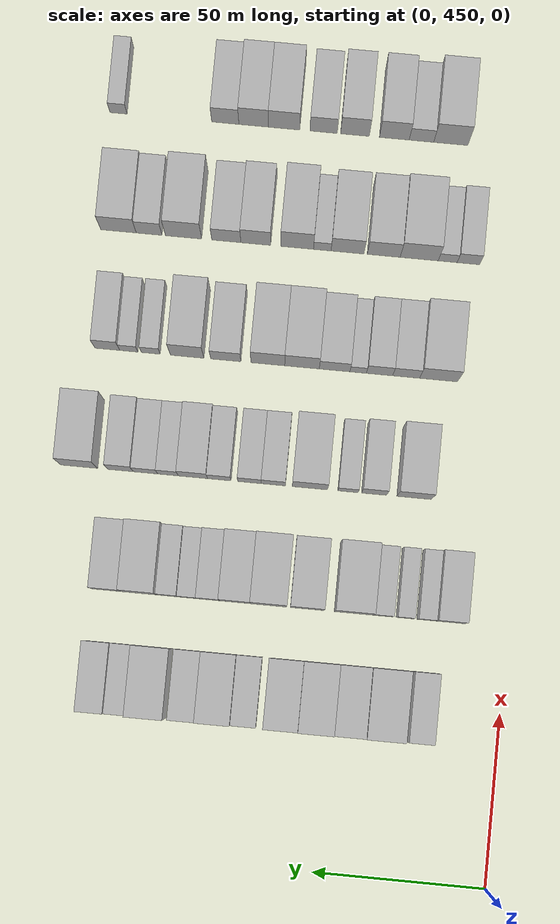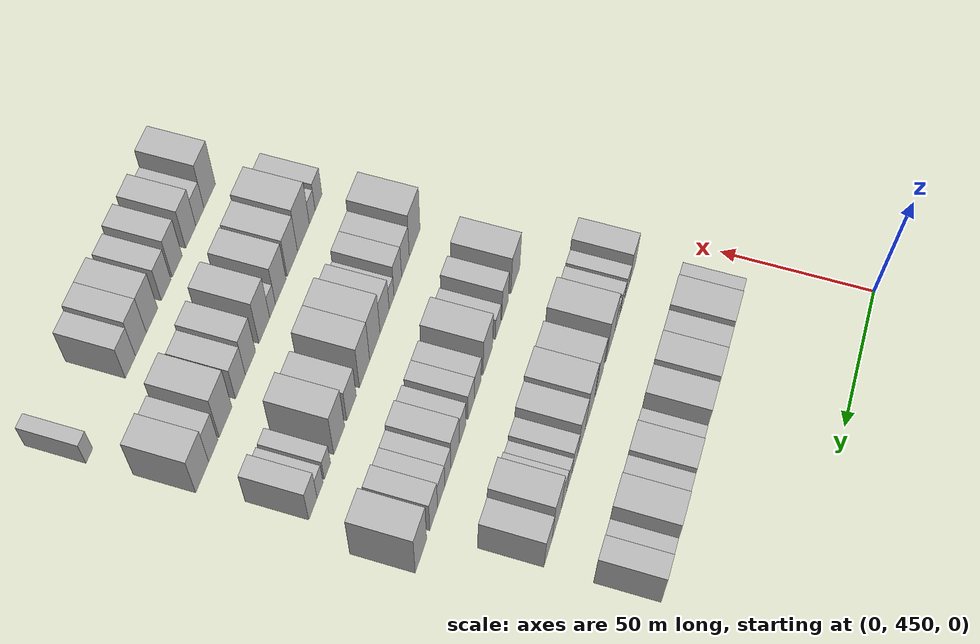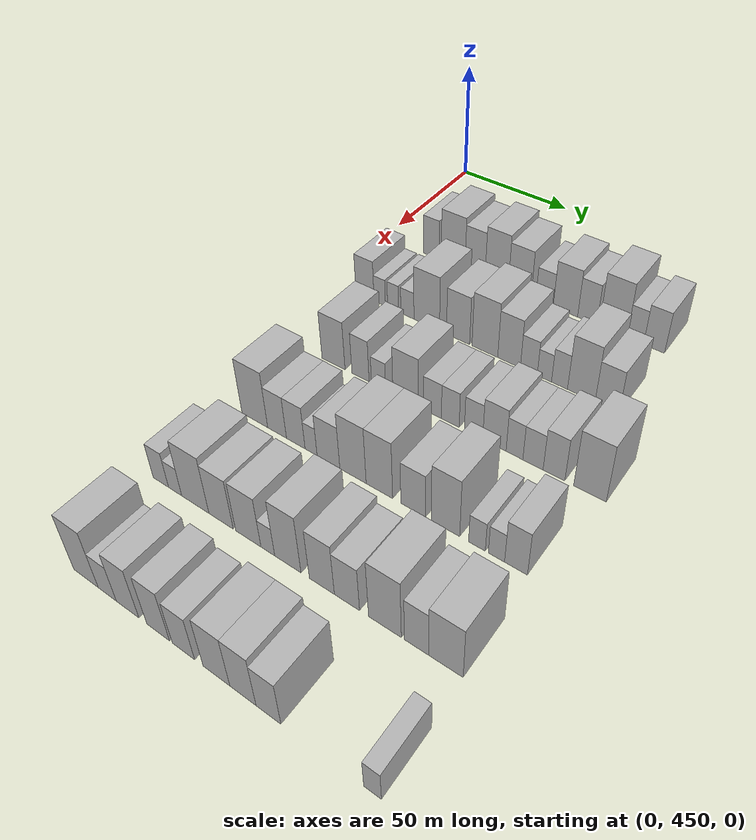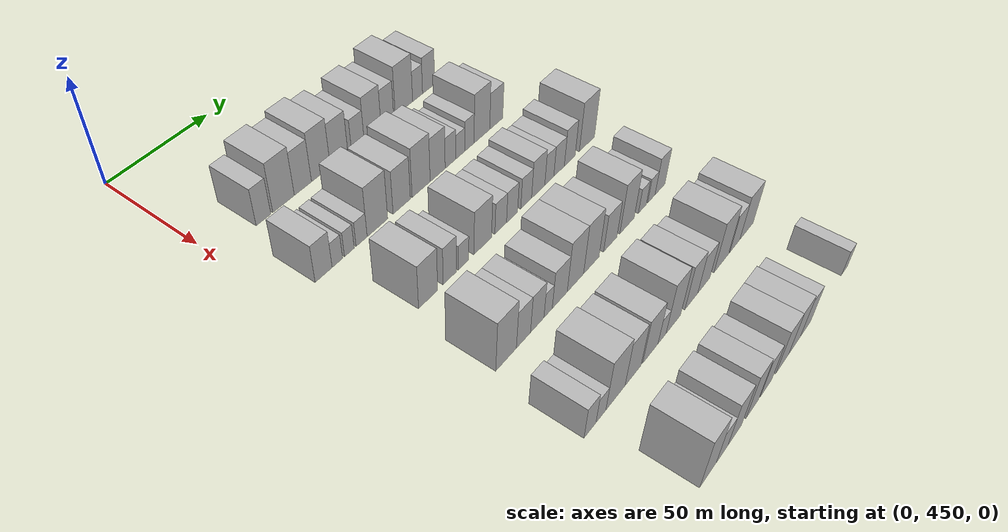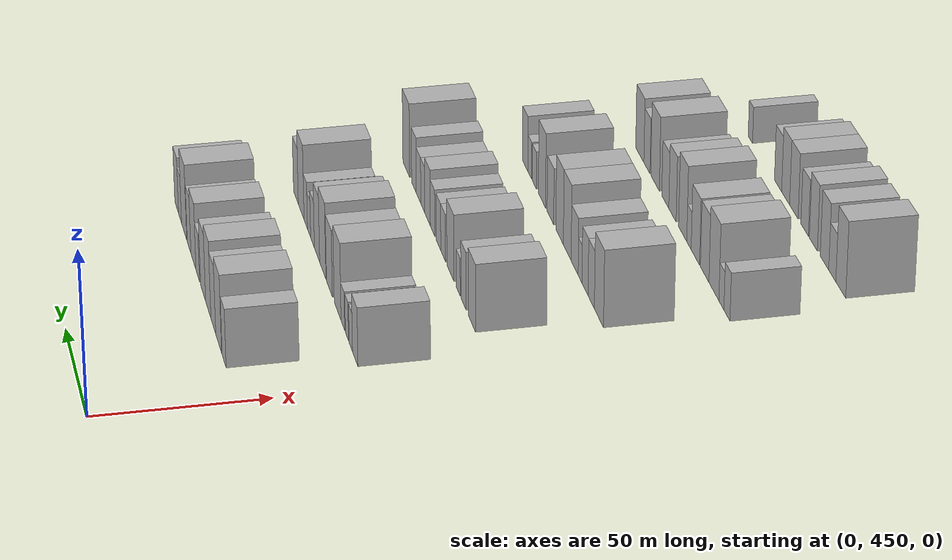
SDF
<sdf version="1.6">
 <world name="default">
  <model name="building_105">
   <static>1</static>
   <pose>50.0000 472.6835 0 0.000000 0.000000 0.000000</pose>
   <link name="link">
    <pose>0 0 9.00 0 0 0</pose>
    <collision name="collision"><geometry><box><size>20.0000 7.3542 18.0000</size></box></geometry></collision>
    <visual name="visual">
     <cast_shadows>0</cast_shadows>
     <geometry><box><size>20.0000 7.3542 18.0000</size></box></geometry>
     <material>
      <script>
       <uri>model://HANNAS_wall/materials/scripts</uri>
       <uri>model://HANNAS_wall/materials/textures</uri>
       <name>vrc/HANNAS_wall</name>
      </script>
     </material>
    </visual>
   </link>
  </model>
  <model name="building_106">
   <static>1</static>
   <pose>50.0000 482.9044 0 0.000000 0.000000 0.000000</pose>
   <link name="link">
    <pose>0 0 12.00 0 0 0</pose>
    <collision name="collision"><geometry><box><size>20.0000 11.0876 24.0000</size></box></geometry></collision>
    <visual name="visual">
     <cast_shadows>0</cast_shadows>
     <geometry><box><size>20.0000 11.0876 24.0000</size></box></geometry>
     <material>
      <script>
       <uri>model://HANNAS_wall/materials/scripts</uri>
       <uri>model://HANNAS_wall/materials/textures</uri>
       <name>vrc/HANNAS_wall</name>
      </script>
     </material>
    </visual>
   </link>
  </model>
  <model name="building_107">
   <static>1</static>
   <pose>50.0000 493.0056 0 0.000000 0.000000 0.000000</pose>
   <link name="link">
    <pose>0 0 10.50 0 0 0</pose>
    <collision name="collision"><geometry><box><size>20.0000 9.1148 21.0000</size></box></geometry></collision>
    <visual name="visual">
     <cast_shadows>0</cast_shadows>
     <geometry><box><size>20.0000 9.1148 21.0000</size></box></geometry>
     <material>
      <script>
       <uri>model://HANNAS_wall/materials/scripts</uri>
       <uri>model://HANNAS_wall/materials/textures</uri>
       <name>vrc/HANNAS_wall</name>
      </script>
     </material>
    </visual>
   </link>
  </model>
  <model name="building_108">
   <static>1</static>
   <pose>50.0000 502.7016 0 0.000000 0.000000 0.000000</pose>
   <link name="link">
    <pose>0 0 12.00 0 0 0</pose>
    <collision name="collision"><geometry><box><size>20.0000 10.2772 24.0000</size></box></geometry></collision>
    <visual name="visual">
     <cast_shadows>0</cast_shadows>
     <geometry><box><size>20.0000 10.2772 24.0000</size></box></geometry>
     <material>
      <script>
       <uri>model://HANNAS_wall/materials/scripts</uri>
       <uri>model://HANNAS_wall/materials/textures</uri>
       <name>vrc/HANNAS_wall</name>
      </script>
     </material>
    </visual>
   </link>
  </model>
  <model name="building_109">
   <static>1</static>
   <pose>50.0000 512.7826 0 0.000000 0.000000 0.000000</pose>
   <link name="link">
    <pose>0 0 10.50 0 0 0</pose>
    <collision name="collision"><geometry><box><size>20.0000 9.8848 21.0000</size></box></geometry></collision>
    <visual name="visual">
     <cast_shadows>0</cast_shadows>
     <geometry><box><size>20.0000 9.8848 21.0000</size></box></geometry>
     <material>
      <script>
       <uri>model://HANNAS_wall/materials/scripts</uri>
       <uri>model://HANNAS_wall/materials/textures</uri>
       <name>vrc/HANNAS_wall</name>
      </script>
     </material>
    </visual>
   </link>
  </model>
  <model name="building_110">
   <static>1</static>
   <pose>50.0000 523.3866 0 0.000000 0.000000 0.000000</pose>
   <link name="link">
    <pose>0 0 7.50 0 0 0</pose>
    <collision name="collision"><geometry><box><size>20.0000 7.3233 15.0000</size></box></geometry></collision>
    <visual name="visual">
     <cast_shadows>0</cast_shadows>
     <geometry><box><size>20.0000 7.3233 15.0000</size></box></geometry>
     <material>
      <script>
       <uri>model://HANNAS_wall/materials/scripts</uri>
       <uri>model://HANNAS_wall/materials/textures</uri>
       <name>vrc/HANNAS_wall</name>
      </script>
     </material>
    </visual>
   </link>
  </model>
  <model name="building_111">
   <static>1</static>
   <pose>50.0000 532.0826 0 0.000000 0.000000 0.000000</pose>
   <link name="link">
    <pose>0 0 10.50 0 0 0</pose>
    <collision name="collision"><geometry><box><size>20.0000 10.0685 21.0000</size></box></geometry></collision>
    <visual name="visual">
     <cast_shadows>0</cast_shadows>
     <geometry><box><size>20.0000 10.0685 21.0000</size></box></geometry>
     <material>
      <script>
       <uri>model://HANNAS_wall/materials/scripts</uri>
       <uri>model://HANNAS_wall/materials/textures</uri>
       <name>vrc/HANNAS_wall</name>
      </script>
     </material>
    </visual>
   </link>
  </model>
  <model name="building_112">
   <static>1</static>
   <pose>50.0000 540.9679 0 0.000000 0.000000 0.000000</pose>
   <link name="link">
    <pose>0 0 9.00 0 0 0</pose>
    <collision name="collision"><geometry><box><size>20.0000 7.7022 18.0000</size></box></geometry></collision>
    <visual name="visual">
     <cast_shadows>0</cast_shadows>
     <geometry><box><size>20.0000 7.7022 18.0000</size></box></geometry>
     <material>
      <script>
       <uri>model://HANNAS_wall/materials/scripts</uri>
       <uri>model://HANNAS_wall/materials/textures</uri>
       <name>vrc/HANNAS_wall</name>
      </script>
     </material>
    </visual>
   </link>
  </model>
  <model name="building_113">
   <static>1</static>
   <pose>50.0000 551.2497 0 0.000000 0.000000 0.000000</pose>
   <link name="link">
    <pose>0 0 12.00 0 0 0</pose>
    <collision name="collision"><geometry><box><size>20.0000 10.8615 24.0000</size></box></geometry></collision>
    <visual name="visual">
     <cast_shadows>0</cast_shadows>
     <geometry><box><size>20.0000 10.8615 24.0000</size></box></geometry>
     <material>
      <script>
       <uri>model://HANNAS_wall/materials/scripts</uri>
       <uri>model://HANNAS_wall/materials/textures</uri>
       <name>vrc/HANNAS_wall</name>
      </script>
     </material>
    </visual>
   </link>
  </model>
  <model name="building_114">
   <static>1</static>
   <pose>50.0000 559.8625 0 0.000000 0.000000 0.000000</pose>
   <link name="link">
    <pose>0 0 7.50 0 0 0</pose>
    <collision name="collision"><geometry><box><size>20.0000 6.3642 15.0000</size></box></geometry></collision>
    <visual name="visual">
     <cast_shadows>0</cast_shadows>
     <geometry><box><size>20.0000 6.3642 15.0000</size></box></geometry>
     <material>
      <script>
       <uri>model://HANNAS_wall/materials/scripts</uri>
       <uri>model://HANNAS_wall/materials/textures</uri>
       <name>vrc/HANNAS_wall</name>
      </script>
     </material>
    </visual>
   </link>
  </model>
  <model name="building_115">
   <static>1</static>
   <pose>50.0000 566.9976 0 0.000000 0.000000 0.000000</pose>
   <link name="link">
    <pose>0 0 9.00 0 0 0</pose>
    <collision name="collision"><geometry><box><size>20.0000 7.9060 18.0000</size></box></geometry></collision>
    <visual name="visual">
     <cast_shadows>0</cast_shadows>
     <geometry><box><size>20.0000 7.9060 18.0000</size></box></geometry>
     <material>
      <script>
       <uri>model://HANNAS_wall/materials/scripts</uri>
       <uri>model://HANNAS_wall/materials/textures</uri>
       <name>vrc/HANNAS_wall</name>
      </script>
     </material>
    </visual>
   </link>
  </model>
  <model name="building_236">
   <static>1</static>
   <pose>85.0000 466.7882 0 0.000000 0.000000 0.000000</pose>
   <link name="link">
    <pose>0 0 9.00 0 0 0</pose>
    <collision name="collision"><geometry><box><size>20.0000 8.4854 18.0000</size></box></geometry></collision>
    <visual name="visual">
     <cast_shadows>0</cast_shadows>
     <geometry><box><size>20.0000 8.4854 18.0000</size></box></geometry>
     <material>
      <script>
       <uri>model://HANNAS_wall/materials/scripts</uri>
       <uri>model://HANNAS_wall/materials/textures</uri>
       <name>vrc/HANNAS_wall</name>
      </script>
     </material>
    </visual>
   </link>
  </model>
  <model name="building_237">
   <static>1</static>
   <pose>85.0000 473.6674 0 0.000000 0.000000 0.000000</pose>
   <link name="link">
    <pose>0 0 6.00 0 0 0</pose>
    <collision name="collision"><geometry><box><size>20.0000 5.2730 12.0000</size></box></geometry></collision>
    <visual name="visual">
     <cast_shadows>0</cast_shadows>
     <geometry><box><size>20.0000 5.2730 12.0000</size></box></geometry>
     <material>
      <script>
       <uri>model://HANNAS_wall/materials/scripts</uri>
       <uri>model://HANNAS_wall/materials/textures</uri>
       <name>vrc/HANNAS_wall</name>
      </script>
     </material>
    </visual>
   </link>
  </model>
  <model name="building_238">
   <static>1</static>
   <pose>85.0000 479.8093 0 0.000000 0.000000 0.000000</pose>
   <link name="link">
    <pose>0 0 6.00 0 0 0</pose>
    <collision name="collision"><geometry><box><size>20.0000 5.0107 12.0000</size></box></geometry></collision>
    <visual name="visual">
     <cast_shadows>0</cast_shadows>
     <geometry><box><size>20.0000 5.0107 12.0000</size></box></geometry>
     <material>
      <script>
       <uri>model://HANNAS_wall/materials/scripts</uri>
       <uri>model://HANNAS_wall/materials/textures</uri>
       <name>vrc/HANNAS_wall</name>
      </script>
     </material>
    </visual>
   </link>
  </model>
  <model name="building_239">
   <static>1</static>
   <pose>85.0000 486.2378 0 0.000000 0.000000 0.000000</pose>
   <link name="link">
    <pose>0 0 6.00 0 0 0</pose>
    <collision name="collision"><geometry><box><size>20.0000 5.8464 12.0000</size></box></geometry></collision>
    <visual name="visual">
     <cast_shadows>0</cast_shadows>
     <geometry><box><size>20.0000 5.8464 12.0000</size></box></geometry>
     <material>
      <script>
       <uri>model://HANNAS_wall/materials/scripts</uri>
       <uri>model://HANNAS_wall/materials/textures</uri>
       <name>vrc/HANNAS_wall</name>
      </script>
     </material>
    </visual>
   </link>
  </model>
  <model name="building_240">
   <static>1</static>
   <pose>85.0000 494.7412 0 0.000000 0.000000 0.000000</pose>
   <link name="link">
    <pose>0 0 12.00 0 0 0</pose>
    <collision name="collision"><geometry><box><size>20.0000 11.1603 24.0000</size></box></geometry></collision>
    <visual name="visual">
     <cast_shadows>0</cast_shadows>
     <geometry><box><size>20.0000 11.1603 24.0000</size></box></geometry>
     <material>
      <script>
       <uri>model://HANNAS_wall/materials/scripts</uri>
       <uri>model://HANNAS_wall/materials/textures</uri>
       <name>vrc/HANNAS_wall</name>
      </script>
     </material>
    </visual>
   </link>
  </model>
  <model name="building_241">
   <static>1</static>
   <pose>85.0000 508.1950 0 0.000000 0.000000 0.000000</pose>
   <link name="link">
    <pose>0 0 10.50 0 0 0</pose>
    <collision name="collision"><geometry><box><size>20.0000 9.7474 21.0000</size></box></geometry></collision>
    <visual name="visual">
     <cast_shadows>0</cast_shadows>
     <geometry><box><size>20.0000 9.7474 21.0000</size></box></geometry>
     <material>
      <script>
       <uri>model://HANNAS_wall/materials/scripts</uri>
       <uri>model://HANNAS_wall/materials/textures</uri>
       <name>vrc/HANNAS_wall</name>
      </script>
     </material>
    </visual>
   </link>
  </model>
  <model name="building_242">
   <static>1</static>
   <pose>85.0000 519.3416 0 0.000000 0.000000 0.000000</pose>
   <link name="link">
    <pose>0 0 12.00 0 0 0</pose>
    <collision name="collision"><geometry><box><size>20.0000 10.5458 24.0000</size></box></geometry></collision>
    <visual name="visual">
     <cast_shadows>0</cast_shadows>
     <geometry><box><size>20.0000 10.5458 24.0000</size></box></geometry>
     <material>
      <script>
       <uri>model://HANNAS_wall/materials/scripts</uri>
       <uri>model://HANNAS_wall/materials/textures</uri>
       <name>vrc/HANNAS_wall</name>
      </script>
     </material>
    </visual>
   </link>
  </model>
  <model name="building_243">
   <static>1</static>
   <pose>85.0000 529.1252 0 0.000000 0.000000 0.000000</pose>
   <link name="link">
    <pose>0 0 10.50 0 0 0</pose>
    <collision name="collision"><geometry><box><size>20.0000 9.0214 21.0000</size></box></geometry></collision>
    <visual name="visual">
     <cast_shadows>0</cast_shadows>
     <geometry><box><size>20.0000 9.0214 21.0000</size></box></geometry>
     <material>
      <script>
       <uri>model://HANNAS_wall/materials/scripts</uri>
       <uri>model://HANNAS_wall/materials/textures</uri>
       <name>vrc/HANNAS_wall</name>
      </script>
     </material>
    </visual>
   </link>
  </model>
  <model name="building_244">
   <static>1</static>
   <pose>85.0000 536.9329 0 0.000000 0.000000 0.000000</pose>
   <link name="link">
    <pose>0 0 7.50 0 0 0</pose>
    <collision name="collision"><geometry><box><size>20.0000 6.5941 15.0000</size></box></geometry></collision>
    <visual name="visual">
     <cast_shadows>0</cast_shadows>
     <geometry><box><size>20.0000 6.5941 15.0000</size></box></geometry>
     <material>
      <script>
       <uri>model://HANNAS_wall/materials/scripts</uri>
       <uri>model://HANNAS_wall/materials/textures</uri>
       <name>vrc/HANNAS_wall</name>
      </script>
     </material>
    </visual>
   </link>
  </model>
  <model name="building_245">
   <static>1</static>
   <pose>85.0000 542.9653 0 0.000000 0.000000 0.000000</pose>
   <link name="link">
    <pose>0 0 6.00 0 0 0</pose>
    <collision name="collision"><geometry><box><size>20.0000 5.4706 12.0000</size></box></geometry></collision>
    <visual name="visual">
     <cast_shadows>0</cast_shadows>
     <geometry><box><size>20.0000 5.4706 12.0000</size></box></geometry>
     <material>
      <script>
       <uri>model://HANNAS_wall/materials/scripts</uri>
       <uri>model://HANNAS_wall/materials/textures</uri>
       <name>vrc/HANNAS_wall</name>
      </script>
     </material>
    </visual>
   </link>
  </model>
  <model name="building_246">
   <static>1</static>
   <pose>85.0000 548.7106 0 0.000000 0.000000 0.000000</pose>
   <link name="link">
    <pose>0 0 7.50 0 0 0</pose>
    <collision name="collision"><geometry><box><size>20.0000 6.0200 15.0000</size></box></geometry></collision>
    <visual name="visual">
     <cast_shadows>0</cast_shadows>
     <geometry><box><size>20.0000 6.0200 15.0000</size></box></geometry>
     <material>
      <script>
       <uri>model://HANNAS_wall/materials/scripts</uri>
       <uri>model://HANNAS_wall/materials/textures</uri>
       <name>vrc/HANNAS_wall</name>
      </script>
     </material>
    </visual>
   </link>
  </model>
  <model name="building_247">
   <static>1</static>
   <pose>85.0000 556.8302 0 0.000000 0.000000 0.000000</pose>
   <link name="link">
    <pose>0 0 12.00 0 0 0</pose>
    <collision name="collision"><geometry><box><size>20.0000 10.2192 24.0000</size></box></geometry></collision>
    <visual name="visual">
     <cast_shadows>0</cast_shadows>
     <geometry><box><size>20.0000 10.2192 24.0000</size></box></geometry>
     <material>
      <script>
       <uri>model://HANNAS_wall/materials/scripts</uri>
       <uri>model://HANNAS_wall/materials/textures</uri>
       <name>vrc/HANNAS_wall</name>
      </script>
     </material>
    </visual>
   </link>
  </model>
  <model name="building_248">
   <static>1</static>
   <pose>85.0000 566.2757 0 0.000000 0.000000 0.000000</pose>
   <link name="link">
    <pose>0 0 9.00 0 0 0</pose>
    <collision name="collision"><geometry><box><size>20.0000 8.6718 18.0000</size></box></geometry></collision>
    <visual name="visual">
     <cast_shadows>0</cast_shadows>
     <geometry><box><size>20.0000 8.6718 18.0000</size></box></geometry>
     <material>
      <script>
       <uri>model://HANNAS_wall/materials/scripts</uri>
       <uri>model://HANNAS_wall/materials/textures</uri>
       <name>vrc/HANNAS_wall</name>
      </script>
     </material>
    </visual>
   </link>
  </model>
  <model name="building_370">
   <static>1</static>
   <pose>120.0000 480.1877 0 0.000000 0.000000 0.000000</pose>
   <link name="link">
    <pose>0 0 10.50 0 0 0</pose>
    <collision name="collision"><geometry><box><size>20.0000 10.1036 21.0000</size></box></geometry></collision>
    <visual name="visual">
     <cast_shadows>0</cast_shadows>
     <geometry><box><size>20.0000 10.1036 21.0000</size></box></geometry>
     <material>
      <script>
       <uri>model://HANNAS_wall/materials/scripts</uri>
       <uri>model://HANNAS_wall/materials/textures</uri>
       <name>vrc/HANNAS_wall</name>
      </script>
     </material>
    </visual>
   </link>
  </model>
  <model name="building_371">
   <static>1</static>
   <pose>120.0000 491.8956 0 0.000000 0.000000 0.000000</pose>
   <link name="link">
    <pose>0 0 9.00 0 0 0</pose>
    <collision name="collision"><geometry><box><size>20.0000 7.3122 18.0000</size></box></geometry></collision>
    <visual name="visual">
     <cast_shadows>0</cast_shadows>
     <geometry><box><size>20.0000 7.3122 18.0000</size></box></geometry>
     <material>
      <script>
       <uri>model://HANNAS_wall/materials/scripts</uri>
       <uri>model://HANNAS_wall/materials/textures</uri>
       <name>vrc/HANNAS_wall</name>
      </script>
     </material>
    </visual>
   </link>
  </model>
  <model name="building_372">
   <static>1</static>
   <pose>120.0000 499.5115 0 0.000000 0.000000 0.000000</pose>
   <link name="link">
    <pose>0 0 6.00 0 0 0</pose>
    <collision name="collision"><geometry><box><size>20.0000 5.9195 12.0000</size></box></geometry></collision>
    <visual name="visual">
     <cast_shadows>0</cast_shadows>
     <geometry><box><size>20.0000 5.9195 12.0000</size></box></geometry>
     <material>
      <script>
       <uri>model://HANNAS_wall/materials/scripts</uri>
       <uri>model://HANNAS_wall/materials/textures</uri>
       <name>vrc/HANNAS_wall</name>
      </script>
     </material>
    </visual>
   </link>
  </model>
  <model name="building_373">
   <static>1</static>
   <pose>120.0000 510.6120 0 0.000000 0.000000 0.000000</pose>
   <link name="link">
    <pose>0 0 10.50 0 0 0</pose>
    <collision name="collision"><geometry><box><size>20.0000 10.2816 21.0000</size></box></geometry></collision>
    <visual name="visual">
     <cast_shadows>0</cast_shadows>
     <geometry><box><size>20.0000 10.2816 21.0000</size></box></geometry>
     <material>
      <script>
       <uri>model://HANNAS_wall/materials/scripts</uri>
       <uri>model://HANNAS_wall/materials/textures</uri>
       <name>vrc/HANNAS_wall</name>
      </script>
     </material>
    </visual>
   </link>
  </model>
  <model name="building_374">
   <static>1</static>
   <pose>120.0000 521.2677 0 0.000000 0.000000 0.000000</pose>
   <link name="link">
    <pose>0 0 7.50 0 0 0</pose>
    <collision name="collision"><geometry><box><size>20.0000 7.0298 15.0000</size></box></geometry></collision>
    <visual name="visual">
     <cast_shadows>0</cast_shadows>
     <geometry><box><size>20.0000 7.0298 15.0000</size></box></geometry>
     <material>
      <script>
       <uri>model://HANNAS_wall/materials/scripts</uri>
       <uri>model://HANNAS_wall/materials/textures</uri>
       <name>vrc/HANNAS_wall</name>
      </script>
     </material>
    </visual>
   </link>
  </model>
  <model name="building_375">
   <static>1</static>
   <pose>120.0000 528.2002 0 0.000000 0.000000 0.000000</pose>
   <link name="link">
    <pose>0 0 7.50 0 0 0</pose>
    <collision name="collision"><geometry><box><size>20.0000 6.8352 15.0000</size></box></geometry></collision>
    <visual name="visual">
     <cast_shadows>0</cast_shadows>
     <geometry><box><size>20.0000 6.8352 15.0000</size></box></geometry>
     <material>
      <script>
       <uri>model://HANNAS_wall/materials/scripts</uri>
       <uri>model://HANNAS_wall/materials/textures</uri>
       <name>vrc/HANNAS_wall</name>
      </script>
     </material>
    </visual>
   </link>
  </model>
  <model name="building_376">
   <static>1</static>
   <pose>120.0000 537.0413 0 0.000000 0.000000 0.000000</pose>
   <link name="link">
    <pose>0 0 7.50 0 0 0</pose>
    <collision name="collision"><geometry><box><size>20.0000 6.8470 15.0000</size></box></geometry></collision>
    <visual name="visual">
     <cast_shadows>0</cast_shadows>
     <geometry><box><size>20.0000 6.8470 15.0000</size></box></geometry>
     <material>
      <script>
       <uri>model://HANNAS_wall/materials/scripts</uri>
       <uri>model://HANNAS_wall/materials/textures</uri>
       <name>vrc/HANNAS_wall</name>
      </script>
     </material>
    </visual>
   </link>
  </model>
  <model name="building_377">
   <static>1</static>
   <pose>120.0000 544.7431 0 0.000000 0.000000 0.000000</pose>
   <link name="link">
    <pose>0 0 9.00 0 0 0</pose>
    <collision name="collision"><geometry><box><size>20.0000 8.5565 18.0000</size></box></geometry></collision>
    <visual name="visual">
     <cast_shadows>0</cast_shadows>
     <geometry><box><size>20.0000 8.5565 18.0000</size></box></geometry>
     <material>
      <script>
       <uri>model://HANNAS_wall/materials/scripts</uri>
       <uri>model://HANNAS_wall/materials/textures</uri>
       <name>vrc/HANNAS_wall</name>
      </script>
     </material>
    </visual>
   </link>
  </model>
  <model name="building_378">
   <static>1</static>
   <pose>120.0000 552.0227 0 0.000000 0.000000 0.000000</pose>
   <link name="link">
    <pose>0 0 7.50 0 0 0</pose>
    <collision name="collision"><geometry><box><size>20.0000 6.0027 15.0000</size></box></geometry></collision>
    <visual name="visual">
     <cast_shadows>0</cast_shadows>
     <geometry><box><size>20.0000 6.0027 15.0000</size></box></geometry>
     <material>
      <script>
       <uri>model://HANNAS_wall/materials/scripts</uri>
       <uri>model://HANNAS_wall/materials/textures</uri>
       <name>vrc/HANNAS_wall</name>
      </script>
     </material>
    </visual>
   </link>
  </model>
  <model name="building_379">
   <static>1</static>
   <pose>120.0000 558.5748 0 0.000000 0.000000 0.000000</pose>
   <link name="link">
    <pose>0 0 7.50 0 0 0</pose>
    <collision name="collision"><geometry><box><size>20.0000 7.1016 15.0000</size></box></geometry></collision>
    <visual name="visual">
     <cast_shadows>0</cast_shadows>
     <geometry><box><size>20.0000 7.1016 15.0000</size></box></geometry>
     <material>
      <script>
       <uri>model://HANNAS_wall/materials/scripts</uri>
       <uri>model://HANNAS_wall/materials/textures</uri>
       <name>vrc/HANNAS_wall</name>
      </script>
     </material>
    </visual>
   </link>
  </model>
  <model name="building_380">
   <static>1</static>
   <pose>120.0000 565.8509 0 0.000000 0.000000 0.000000</pose>
   <link name="link">
    <pose>0 0 9.00 0 0 0</pose>
    <collision name="collision"><geometry><box><size>20.0000 7.4505 18.0000</size></box></geometry></collision>
    <visual name="visual">
     <cast_shadows>0</cast_shadows>
     <geometry><box><size>20.0000 7.4505 18.0000</size></box></geometry>
     <material>
      <script>
       <uri>model://HANNAS_wall/materials/scripts</uri>
       <uri>model://HANNAS_wall/materials/textures</uri>
       <name>vrc/HANNAS_wall</name>
      </script>
     </material>
    </visual>
   </link>
  </model>
  <model name="building_381">
   <static>1</static>
   <pose>120.0000 577.9678 0 0.000000 0.000000 0.000000</pose>
   <link name="link">
    <pose>0 0 12.00 0 0 0</pose>
    <collision name="collision"><geometry><box><size>20.0000 10.7833 24.0000</size></box></geometry></collision>
    <visual name="visual">
     <cast_shadows>0</cast_shadows>
     <geometry><box><size>20.0000 10.7833 24.0000</size></box></geometry>
     <material>
      <script>
       <uri>model://HANNAS_wall/materials/scripts</uri>
       <uri>model://HANNAS_wall/materials/textures</uri>
       <name>vrc/HANNAS_wall</name>
      </script>
     </material>
    </visual>
   </link>
  </model>
  <model name="building_497">
   <static>1</static>
   <pose>155.0000 476.1575 0 0.000000 0.000000 0.000000</pose>
   <link name="link">
    <pose>0 0 12.00 0 0 0</pose>
    <collision name="collision"><geometry><box><size>20.0000 11.1388 24.0000</size></box></geometry></collision>
    <visual name="visual">
     <cast_shadows>0</cast_shadows>
     <geometry><box><size>20.0000 11.1388 24.0000</size></box></geometry>
     <material>
      <script>
       <uri>model://HANNAS_wall/materials/scripts</uri>
       <uri>model://HANNAS_wall/materials/textures</uri>
       <name>vrc/HANNAS_wall</name>
      </script>
     </material>
    </visual>
   </link>
  </model>
  <model name="building_498">
   <static>1</static>
   <pose>155.0000 485.6720 0 0.000000 0.000000 0.000000</pose>
   <link name="link">
    <pose>0 0 9.00 0 0 0</pose>
    <collision name="collision"><geometry><box><size>20.0000 7.8903 18.0000</size></box></geometry></collision>
    <visual name="visual">
     <cast_shadows>0</cast_shadows>
     <geometry><box><size>20.0000 7.8903 18.0000</size></box></geometry>
     <material>
      <script>
       <uri>model://HANNAS_wall/materials/scripts</uri>
       <uri>model://HANNAS_wall/materials/textures</uri>
       <name>vrc/HANNAS_wall</name>
      </script>
     </material>
    </visual>
   </link>
  </model>
  <model name="building_499">
   <static>1</static>
   <pose>155.0000 493.4545 0 0.000000 0.000000 0.000000</pose>
   <link name="link">
    <pose>0 0 9.00 0 0 0</pose>
    <collision name="collision"><geometry><box><size>20.0000 7.6746 18.0000</size></box></geometry></collision>
    <visual name="visual">
     <cast_shadows>0</cast_shadows>
     <geometry><box><size>20.0000 7.6746 18.0000</size></box></geometry>
     <material>
      <script>
       <uri>model://HANNAS_wall/materials/scripts</uri>
       <uri>model://HANNAS_wall/materials/textures</uri>
       <name>vrc/HANNAS_wall</name>
      </script>
     </material>
    </visual>
   </link>
  </model>
  <model name="building_500">
   <static>1</static>
   <pose>155.0000 499.7188 0 0.000000 0.000000 0.000000</pose>
   <link name="link">
    <pose>0 0 6.00 0 0 0</pose>
    <collision name="collision"><geometry><box><size>20.0000 4.8539 12.0000</size></box></geometry></collision>
    <visual name="visual">
     <cast_shadows>0</cast_shadows>
     <geometry><box><size>20.0000 4.8539 12.0000</size></box></geometry>
     <material>
      <script>
       <uri>model://HANNAS_wall/materials/scripts</uri>
       <uri>model://HANNAS_wall/materials/textures</uri>
       <name>vrc/HANNAS_wall</name>
      </script>
     </material>
    </visual>
   </link>
  </model>
  <model name="building_501">
   <static>1</static>
   <pose>155.0000 506.6367 0 0.000000 0.000000 0.000000</pose>
   <link name="link">
    <pose>0 0 9.00 0 0 0</pose>
    <collision name="collision"><geometry><box><size>20.0000 8.9819 18.0000</size></box></geometry></collision>
    <visual name="visual">
     <cast_shadows>0</cast_shadows>
     <geometry><box><size>20.0000 8.9819 18.0000</size></box></geometry>
     <material>
      <script>
       <uri>model://HANNAS_wall/materials/scripts</uri>
       <uri>model://HANNAS_wall/materials/textures</uri>
       <name>vrc/HANNAS_wall</name>
      </script>
     </material>
    </visual>
   </link>
  </model>
  <model name="building_502">
   <static>1</static>
   <pose>155.0000 516.1811 0 0.000000 0.000000 0.000000</pose>
   <link name="link">
    <pose>0 0 12.00 0 0 0</pose>
    <collision name="collision"><geometry><box><size>20.0000 10.1068 24.0000</size></box></geometry></collision>
    <visual name="visual">
     <cast_shadows>0</cast_shadows>
     <geometry><box><size>20.0000 10.1068 24.0000</size></box></geometry>
     <material>
      <script>
       <uri>model://HANNAS_wall/materials/scripts</uri>
       <uri>model://HANNAS_wall/materials/textures</uri>
       <name>vrc/HANNAS_wall</name>
      </script>
     </material>
    </visual>
   </link>
  </model>
  <model name="building_503">
   <static>1</static>
   <pose>155.0000 526.1627 0 0.000000 0.000000 0.000000</pose>
   <link name="link">
    <pose>0 0 12.00 0 0 0</pose>
    <collision name="collision"><geometry><box><size>20.0000 9.8565 24.0000</size></box></geometry></collision>
    <visual name="visual">
     <cast_shadows>0</cast_shadows>
     <geometry><box><size>20.0000 9.8565 24.0000</size></box></geometry>
     <material>
      <script>
       <uri>model://HANNAS_wall/materials/scripts</uri>
       <uri>model://HANNAS_wall/materials/textures</uri>
       <name>vrc/HANNAS_wall</name>
      </script>
     </material>
    </visual>
   </link>
  </model>
  <model name="building_504">
   <static>1</static>
   <pose>155.0000 538.5058 0 0.000000 0.000000 0.000000</pose>
   <link name="link">
    <pose>0 0 9.00 0 0 0</pose>
    <collision name="collision"><geometry><box><size>20.0000 8.8298 18.0000</size></box></geometry></collision>
    <visual name="visual">
     <cast_shadows>0</cast_shadows>
     <geometry><box><size>20.0000 8.8298 18.0000</size></box></geometry>
     <material>
      <script>
       <uri>model://HANNAS_wall/materials/scripts</uri>
       <uri>model://HANNAS_wall/materials/textures</uri>
       <name>vrc/HANNAS_wall</name>
      </script>
     </material>
    </visual>
   </link>
  </model>
  <model name="building_505">
   <static>1</static>
   <pose>155.0000 549.8284 0 0.000000 0.000000 0.000000</pose>
   <link name="link">
    <pose>0 0 12.00 0 0 0</pose>
    <collision name="collision"><geometry><box><size>20.0000 9.8153 24.0000</size></box></geometry></collision>
    <visual name="visual">
     <cast_shadows>0</cast_shadows>
     <geometry><box><size>20.0000 9.8153 24.0000</size></box></geometry>
     <material>
      <script>
       <uri>model://HANNAS_wall/materials/scripts</uri>
       <uri>model://HANNAS_wall/materials/textures</uri>
       <name>vrc/HANNAS_wall</name>
      </script>
     </material>
    </visual>
   </link>
  </model>
  <model name="building_506">
   <static>1</static>
   <pose>155.0000 560.5180 0 0.000000 0.000000 0.000000</pose>
   <link name="link">
    <pose>0 0 6.00 0 0 0</pose>
    <collision name="collision"><geometry><box><size>20.0000 5.5639 12.0000</size></box></geometry></collision>
    <visual name="visual">
     <cast_shadows>0</cast_shadows>
     <geometry><box><size>20.0000 5.5639 12.0000</size></box></geometry>
     <material>
      <script>
       <uri>model://HANNAS_wall/materials/scripts</uri>
       <uri>model://HANNAS_wall/materials/textures</uri>
       <name>vrc/HANNAS_wall</name>
      </script>
     </material>
    </visual>
   </link>
  </model>
  <model name="building_507">
   <static>1</static>
   <pose>155.0000 566.9453 0 0.000000 0.000000 0.000000</pose>
   <link name="link">
    <pose>0 0 6.00 0 0 0</pose>
    <collision name="collision"><geometry><box><size>20.0000 5.2907 12.0000</size></box></geometry></collision>
    <visual name="visual">
     <cast_shadows>0</cast_shadows>
     <geometry><box><size>20.0000 5.2907 12.0000</size></box></geometry>
     <material>
      <script>
       <uri>model://HANNAS_wall/materials/scripts</uri>
       <uri>model://HANNAS_wall/materials/textures</uri>
       <name>vrc/HANNAS_wall</name>
      </script>
     </material>
    </visual>
   </link>
  </model>
  <model name="building_508">
   <static>1</static>
   <pose>155.0000 573.2397 0 0.000000 0.000000 0.000000</pose>
   <link name="link">
    <pose>0 0 9.00 0 0 0</pose>
    <collision name="collision"><geometry><box><size>20.0000 7.2981 18.0000</size></box></geometry></collision>
    <visual name="visual">
     <cast_shadows>0</cast_shadows>
     <geometry><box><size>20.0000 7.2981 18.0000</size></box></geometry>
     <material>
      <script>
       <uri>model://HANNAS_wall/materials/scripts</uri>
       <uri>model://HANNAS_wall/materials/textures</uri>
       <name>vrc/HANNAS_wall</name>
      </script>
     </material>
    </visual>
   </link>
  </model>
  <model name="building_629">
   <static>1</static>
   <pose>190.0000 470.4654 0 0.000000 0.000000 0.000000</pose>
   <link name="link">
    <pose>0 0 7.50 0 0 0</pose>
    <collision name="collision"><geometry><box><size>20.0000 6.6091 15.0000</size></box></geometry></collision>
    <visual name="visual">
     <cast_shadows>0</cast_shadows>
     <geometry><box><size>20.0000 6.6091 15.0000</size></box></geometry>
     <material>
      <script>
       <uri>model://HANNAS_wall/materials/scripts</uri>
       <uri>model://HANNAS_wall/materials/textures</uri>
       <name>vrc/HANNAS_wall</name>
      </script>
     </material>
    </visual>
   </link>
  </model>
  <model name="building_630">
   <static>1</static>
   <pose>190.0000 476.5558 0 0.000000 0.000000 0.000000</pose>
   <link name="link">
    <pose>0 0 6.00 0 0 0</pose>
    <collision name="collision"><geometry><box><size>20.0000 5.5716 12.0000</size></box></geometry></collision>
    <visual name="visual">
     <cast_shadows>0</cast_shadows>
     <geometry><box><size>20.0000 5.5716 12.0000</size></box></geometry>
     <material>
      <script>
       <uri>model://HANNAS_wall/materials/scripts</uri>
       <uri>model://HANNAS_wall/materials/textures</uri>
       <name>vrc/HANNAS_wall</name>
      </script>
     </material>
    </visual>
   </link>
  </model>
  <model name="building_631">
   <static>1</static>
   <pose>190.0000 484.9358 0 0.000000 0.000000 0.000000</pose>
   <link name="link">
    <pose>0 0 12.00 0 0 0</pose>
    <collision name="collision"><geometry><box><size>20.0000 11.1885 24.0000</size></box></geometry></collision>
    <visual name="visual">
     <cast_shadows>0</cast_shadows>
     <geometry><box><size>20.0000 11.1885 24.0000</size></box></geometry>
     <material>
      <script>
       <uri>model://HANNAS_wall/materials/scripts</uri>
       <uri>model://HANNAS_wall/materials/textures</uri>
       <name>vrc/HANNAS_wall</name>
      </script>
     </material>
    </visual>
   </link>
  </model>
  <model name="building_632">
   <static>1</static>
   <pose>190.0000 495.3637 0 0.000000 0.000000 0.000000</pose>
   <link name="link">
    <pose>0 0 10.50 0 0 0</pose>
    <collision name="collision"><geometry><box><size>20.0000 9.6673 21.0000</size></box></geometry></collision>
    <visual name="visual">
     <cast_shadows>0</cast_shadows>
     <geometry><box><size>20.0000 9.6673 21.0000</size></box></geometry>
     <material>
      <script>
       <uri>model://HANNAS_wall/materials/scripts</uri>
       <uri>model://HANNAS_wall/materials/textures</uri>
       <name>vrc/HANNAS_wall</name>
      </script>
     </material>
    </visual>
   </link>
  </model>
  <model name="building_633">
   <static>1</static>
   <pose>190.0000 506.0373 0 0.000000 0.000000 0.000000</pose>
   <link name="link">
    <pose>0 0 10.50 0 0 0</pose>
    <collision name="collision"><geometry><box><size>20.0000 9.6798 21.0000</size></box></geometry></collision>
    <visual name="visual">
     <cast_shadows>0</cast_shadows>
     <geometry><box><size>20.0000 9.6798 21.0000</size></box></geometry>
     <material>
      <script>
       <uri>model://HANNAS_wall/materials/scripts</uri>
       <uri>model://HANNAS_wall/materials/textures</uri>
       <name>vrc/HANNAS_wall</name>
      </script>
     </material>
    </visual>
   </link>
  </model>
  <model name="building_634">
   <static>1</static>
   <pose>190.0000 513.4545 0 0.000000 0.000000 0.000000</pose>
   <link name="link">
    <pose>0 0 6.00 0 0 0</pose>
    <collision name="collision"><geometry><box><size>20.0000 5.1547 12.0000</size></box></geometry></collision>
    <visual name="visual">
     <cast_shadows>0</cast_shadows>
     <geometry><box><size>20.0000 5.1547 12.0000</size></box></geometry>
     <material>
      <script>
       <uri>model://HANNAS_wall/materials/scripts</uri>
       <uri>model://HANNAS_wall/materials/textures</uri>
       <name>vrc/HANNAS_wall</name>
      </script>
     </material>
    </visual>
   </link>
  </model>
  <model name="building_635">
   <static>1</static>
   <pose>190.0000 520.8337 0 0.000000 0.000000 0.000000</pose>
   <link name="link">
    <pose>0 0 12.00 0 0 0</pose>
    <collision name="collision"><geometry><box><size>20.0000 9.6038 24.0000</size></box></geometry></collision>
    <visual name="visual">
     <cast_shadows>0</cast_shadows>
     <geometry><box><size>20.0000 9.6038 24.0000</size></box></geometry>
     <material>
      <script>
       <uri>model://HANNAS_wall/materials/scripts</uri>
       <uri>model://HANNAS_wall/materials/textures</uri>
       <name>vrc/HANNAS_wall</name>
      </script>
     </material>
    </visual>
   </link>
  </model>
  <model name="building_636">
   <static>1</static>
   <pose>190.0000 533.0217 0 0.000000 0.000000 0.000000</pose>
   <link name="link">
    <pose>0 0 10.50 0 0 0</pose>
    <collision name="collision"><geometry><box><size>20.0000 8.7721 21.0000</size></box></geometry></collision>
    <visual name="visual">
     <cast_shadows>0</cast_shadows>
     <geometry><box><size>20.0000 8.7721 21.0000</size></box></geometry>
     <material>
      <script>
       <uri>model://HANNAS_wall/materials/scripts</uri>
       <uri>model://HANNAS_wall/materials/textures</uri>
       <name>vrc/HANNAS_wall</name>
      </script>
     </material>
    </visual>
   </link>
  </model>
  <model name="building_637">
   <static>1</static>
   <pose>190.0000 541.6836 0 0.000000 0.000000 0.000000</pose>
   <link name="link">
    <pose>0 0 9.00 0 0 0</pose>
    <collision name="collision"><geometry><box><size>20.0000 8.5518 18.0000</size></box></geometry></collision>
    <visual name="visual">
     <cast_shadows>0</cast_shadows>
     <geometry><box><size>20.0000 8.5518 18.0000</size></box></geometry>
     <material>
      <script>
       <uri>model://HANNAS_wall/materials/scripts</uri>
       <uri>model://HANNAS_wall/materials/textures</uri>
       <name>vrc/HANNAS_wall</name>
      </script>
     </material>
    </visual>
   </link>
  </model>
  <model name="building_638">
   <static>1</static>
   <pose>190.0000 554.2904 0 0.000000 0.000000 0.000000</pose>
   <link name="link">
    <pose>0 0 12.00 0 0 0</pose>
    <collision name="collision"><geometry><box><size>20.0000 10.6619 24.0000</size></box></geometry></collision>
    <visual name="visual">
     <cast_shadows>0</cast_shadows>
     <geometry><box><size>20.0000 10.6619 24.0000</size></box></geometry>
     <material>
      <script>
       <uri>model://HANNAS_wall/materials/scripts</uri>
       <uri>model://HANNAS_wall/materials/textures</uri>
       <name>vrc/HANNAS_wall</name>
      </script>
     </material>
    </visual>
   </link>
  </model>
  <model name="building_639">
   <static>1</static>
   <pose>190.0000 564.4152 0 0.000000 0.000000 0.000000</pose>
   <link name="link">
    <pose>0 0 9.00 0 0 0</pose>
    <collision name="collision"><geometry><box><size>20.0000 7.5876 18.0000</size></box></geometry></collision>
    <visual name="visual">
     <cast_shadows>0</cast_shadows>
     <geometry><box><size>20.0000 7.5876 18.0000</size></box></geometry>
     <material>
      <script>
       <uri>model://HANNAS_wall/materials/scripts</uri>
       <uri>model://HANNAS_wall/materials/textures</uri>
       <name>vrc/HANNAS_wall</name>
      </script>
     </material>
    </visual>
   </link>
  </model>
  <model name="building_640">
   <static>1</static>
   <pose>190.0000 573.4414 0 0.000000 0.000000 0.000000</pose>
   <link name="link">
    <pose>0 0 10.50 0 0 0</pose>
    <collision name="collision"><geometry><box><size>20.0000 10.4648 21.0000</size></box></geometry></collision>
    <visual name="visual">
     <cast_shadows>0</cast_shadows>
     <geometry><box><size>20.0000 10.4648 21.0000</size></box></geometry>
     <material>
      <script>
       <uri>model://HANNAS_wall/materials/scripts</uri>
       <uri>model://HANNAS_wall/materials/textures</uri>
       <name>vrc/HANNAS_wall</name>
      </script>
     </material>
    </visual>
   </link>
  </model>
  <model name="building_757">
   <static>1</static>
   <pose>225.0000 478.6896 0 0.000000 0.000000 0.000000</pose>
   <link name="link">
    <pose>0 0 12.00 0 0 0</pose>
    <collision name="collision"><geometry><box><size>20.0000 10.0776 24.0000</size></box></geometry></collision>
    <visual name="visual">
     <cast_shadows>0</cast_shadows>
     <geometry><box><size>20.0000 10.0776 24.0000</size></box></geometry>
     <material>
      <script>
       <uri>model://HANNAS_wall/materials/scripts</uri>
       <uri>model://HANNAS_wall/materials/textures</uri>
       <name>vrc/HANNAS_wall</name>
      </script>
     </material>
    </visual>
   </link>
  </model>
  <model name="building_758">
   <static>1</static>
   <pose>225.0000 487.3491 0 0.000000 0.000000 0.000000</pose>
   <link name="link">
    <pose>0 0 7.50 0 0 0</pose>
    <collision name="collision"><geometry><box><size>20.0000 7.2415 15.0000</size></box></geometry></collision>
    <visual name="visual">
     <cast_shadows>0</cast_shadows>
     <geometry><box><size>20.0000 7.2415 15.0000</size></box></geometry>
     <material>
      <script>
       <uri>model://HANNAS_wall/materials/scripts</uri>
       <uri>model://HANNAS_wall/materials/textures</uri>
       <name>vrc/HANNAS_wall</name>
      </script>
     </material>
    </visual>
   </link>
  </model>
  <model name="building_759">
   <static>1</static>
   <pose>225.0000 495.3725 0 0.000000 0.000000 0.000000</pose>
   <link name="link">
    <pose>0 0 10.50 0 0 0</pose>
    <collision name="collision"><geometry><box><size>20.0000 8.8053 21.0000</size></box></geometry></collision>
    <visual name="visual">
     <cast_shadows>0</cast_shadows>
     <geometry><box><size>20.0000 8.8053 21.0000</size></box></geometry>
     <material>
      <script>
       <uri>model://HANNAS_wall/materials/scripts</uri>
       <uri>model://HANNAS_wall/materials/textures</uri>
       <name>vrc/HANNAS_wall</name>
      </script>
     </material>
    </visual>
   </link>
  </model>
  <model name="building_760">
   <static>1</static>
   <pose>225.0000 507.0147 0 0.000000 0.000000 0.000000</pose>
   <link name="link">
    <pose>0 0 10.50 0 0 0</pose>
    <collision name="collision"><geometry><box><size>20.0000 8.4790 21.0000</size></box></geometry></collision>
    <visual name="visual">
     <cast_shadows>0</cast_shadows>
     <geometry><box><size>20.0000 8.4790 21.0000</size></box></geometry>
     <material>
      <script>
       <uri>model://HANNAS_wall/materials/scripts</uri>
       <uri>model://HANNAS_wall/materials/textures</uri>
       <name>vrc/HANNAS_wall</name>
      </script>
     </material>
    </visual>
   </link>
  </model>
  <model name="building_761">
   <static>1</static>
   <pose>225.0000 516.2846 0 0.000000 0.000000 0.000000</pose>
   <link name="link">
    <pose>0 0 9.00 0 0 0</pose>
    <collision name="collision"><geometry><box><size>20.0000 8.0609 18.0000</size></box></geometry></collision>
    <visual name="visual">
     <cast_shadows>0</cast_shadows>
     <geometry><box><size>20.0000 8.0609 18.0000</size></box></geometry>
     <material>
      <script>
       <uri>model://HANNAS_wall/materials/scripts</uri>
       <uri>model://HANNAS_wall/materials/textures</uri>
       <name>vrc/HANNAS_wall</name>
      </script>
     </material>
    </visual>
   </link>
  </model>
  <model name="building_762">
   <static>1</static>
   <pose>225.0000 527.9354 0 0.000000 0.000000 0.000000</pose>
   <link name="link">
    <pose>0 0 10.50 0 0 0</pose>
    <collision name="collision"><geometry><box><size>20.0000 9.2406 21.0000</size></box></geometry></collision>
    <visual name="visual">
     <cast_shadows>0</cast_shadows>
     <geometry><box><size>20.0000 9.2406 21.0000</size></box></geometry>
     <material>
      <script>
       <uri>model://HANNAS_wall/materials/scripts</uri>
       <uri>model://HANNAS_wall/materials/textures</uri>
       <name>vrc/HANNAS_wall</name>
      </script>
     </material>
    </visual>
   </link>
  </model>
  <model name="building_763">
   <static>1</static>
   <pose>225.0000 536.9367 0 0.000000 0.000000 0.000000</pose>
   <link name="link">
    <pose>0 0 10.50 0 0 0</pose>
    <collision name="collision"><geometry><box><size>20.0000 8.7620 21.0000</size></box></geometry></collision>
    <visual name="visual">
     <cast_shadows>0</cast_shadows>
     <geometry><box><size>20.0000 8.7620 21.0000</size></box></geometry>
     <material>
      <script>
       <uri>model://HANNAS_wall/materials/scripts</uri>
       <uri>model://HANNAS_wall/materials/textures</uri>
       <name>vrc/HANNAS_wall</name>
      </script>
     </material>
    </visual>
   </link>
  </model>
  <model name="building_764">
   <static>1</static>
   <pose>225.0000 545.3311 0 0.000000 0.000000 0.000000</pose>
   <link name="link">
    <pose>0 0 9.00 0 0 0</pose>
    <collision name="collision"><geometry><box><size>20.0000 8.0268 18.0000</size></box></geometry></collision>
    <visual name="visual">
     <cast_shadows>0</cast_shadows>
     <geometry><box><size>20.0000 8.0268 18.0000</size></box></geometry>
     <material>
      <script>
       <uri>model://HANNAS_wall/materials/scripts</uri>
       <uri>model://HANNAS_wall/materials/textures</uri>
       <name>vrc/HANNAS_wall</name>
      </script>
     </material>
    </visual>
   </link>
  </model>
  <model name="building_765">
   <static>1</static>
   <pose>225.0000 576.9246 0 0.000000 0.000000 0.000000</pose>
   <link name="link">
    <pose>0 0 6.00 0 0 0</pose>
    <collision name="collision"><geometry><box><size>20.0000 5.0534 12.0000</size></box></geometry></collision>
    <visual name="visual">
     <cast_shadows>0</cast_shadows>
     <geometry><box><size>20.0000 5.0534 12.0000</size></box></geometry>
     <material>
      <script>
       <uri>model://HANNAS_wall/materials/scripts</uri>
       <uri>model://HANNAS_wall/materials/textures</uri>
       <name>vrc/HANNAS_wall</name>
      </script>
     </material>
    </visual>
   </link>
  </model>
 </world>
</sdf>
